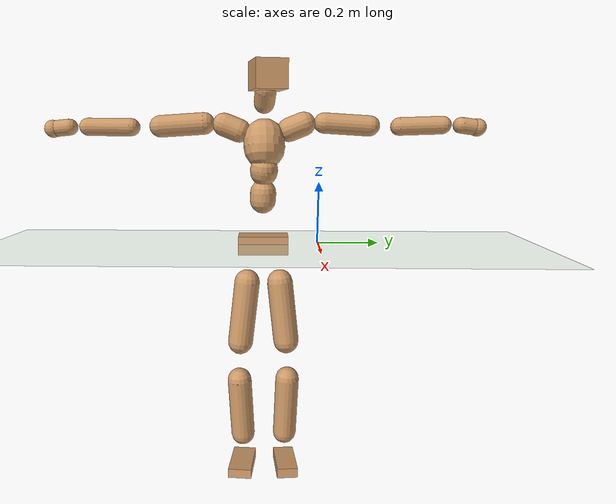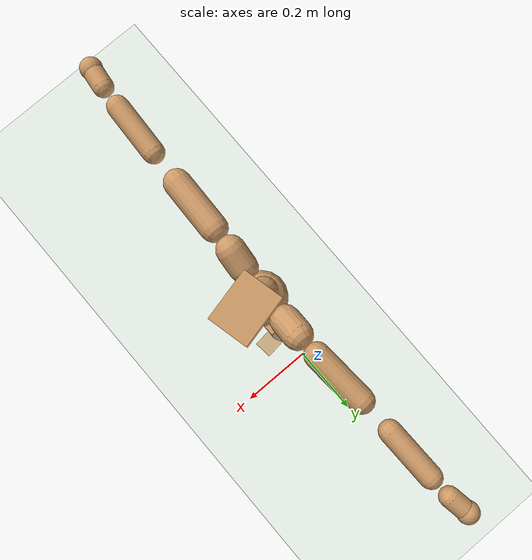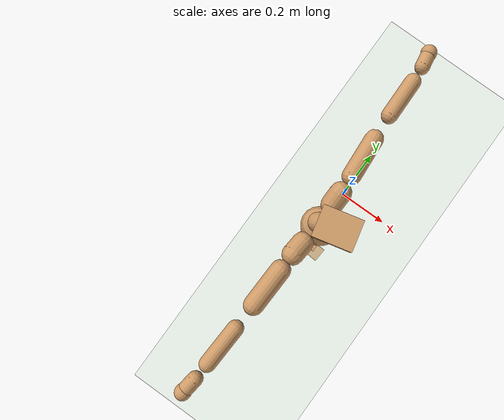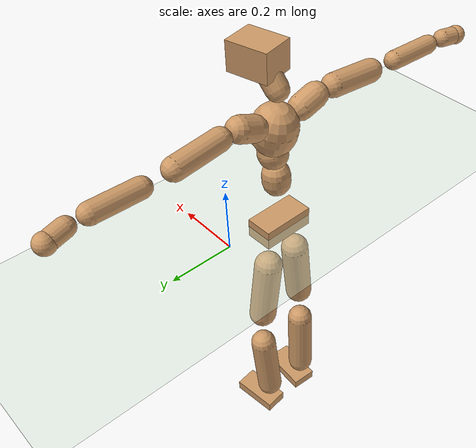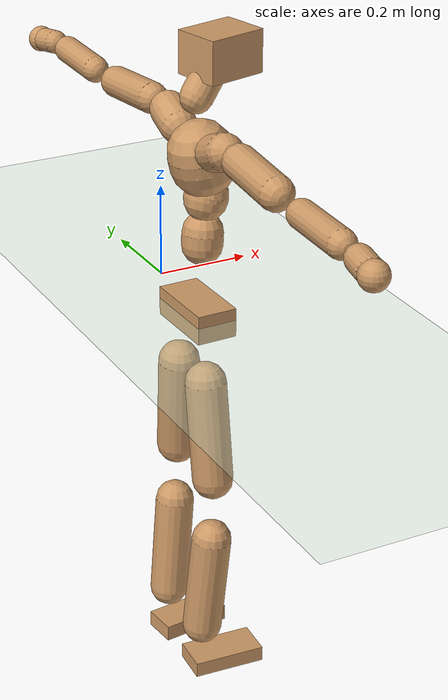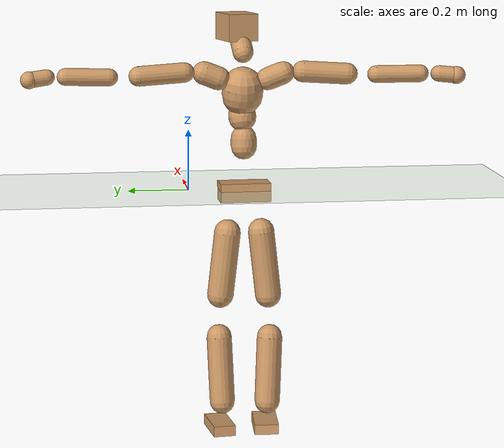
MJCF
<mujoco model="humanoid">
  <compiler coordinate="local" angle="radian"/>
  <default>
    <joint damping="0.0" armature="0.01" stiffness="0.0" limited="true"/>
    <geom conaffinity="1" condim="3" contype="7" margin="0.001" rgba="0.8 0.6 .4 1"/>
  </default>
  <asset>
    <texture type="skybox" builtin="gradient" rgb1=".4 .5 .6" rgb2="0 0 0" width="100" height="100"/>
    <texture builtin="flat" height="1278" mark="cross" markrgb="1 1 1" name="texgeom" random="0.01" rgb1="0.8 0.6 0.4" rgb2="0.8 0.6 0.4" type="cube" width="127"/>
    <texture builtin="checker" height="100" name="texplane" rgb1="0 0 0" rgb2="0.8 0.8 0.8" type="2d" width="100"/>
    <material name="MatPlane" reflectance="0.5" shininess="1" specular="1" texrepeat="60 60" texture="texplane"/>
    <material name="geom" texture="texgeom" texuniform="true"/>
  </asset>
  <worldbody>
    <light cutoff="100" diffuse="1 1 1" dir="-0 0 -1.3" directional="true" exponent="1" pos="0 0 1.3" specular=".1 .1 .1"/>
    <geom conaffinity="1" condim="3" name="floor" pos="0 0 0" rgba="0.8 0.9 0.8 1" size="100 100 .2" type="plane" material="MatPlane"/>
    <body name="Pelvis" pos="-0.0021 -0.1832 0.0037">
      <freejoint name="Pelvis"/>
      <geom type="box" contype="1" conaffinity="1" density="500" pos="-0.0064 -0.0002 -0.0107" size="0.0432 0.0829 0.0309" quat="0.9999 0.0000 0.0000 0.0121" name="Pelvis"/>
      <body name="L_Hip" pos="-0.0215 0.0494 -0.0761">
        <joint name="L_Hip_x" type="hinge" pos="0 0 0" axis="1 0 0" stiffness="800" damping="80" armature="0.02" range="-180.0000 180.0000"/>
        <joint name="L_Hip_y" type="hinge" pos="0 0 0" axis="0 1 0" stiffness="800" damping="80" armature="0.02" range="-180.0000 180.0000"/>
        <joint name="L_Hip_z" type="hinge" pos="0 0 0" axis="0 0 1" stiffness="800" damping="80" armature="0.02" range="-180.0000 180.0000"/>
        <geom type="capsule" contype="1" conaffinity="1" density="500" fromto="0.0023 0.0077 -0.0707 0.0093 0.0309 -0.2829" size="0.0439" name="L_Hip"/>
        <body name="L_Knee" pos="0.0116 0.0387 -0.3536">
          <joint name="L_Knee_x" type="hinge" pos="0 0 0" axis="1 0 0" stiffness="800" damping="80" armature="0.02" range="-180.0000 180.0000"/>
          <joint name="L_Knee_y" type="hinge" pos="0 0 0" axis="0 1 0" stiffness="800" damping="80" armature="0.02" range="-180.0000 180.0000"/>
          <joint name="L_Knee_z" type="hinge" pos="0 0 0" axis="0 0 1" stiffness="800" damping="80" armature="0.02" range="-180.0000 180.0000"/>
          <geom type="capsule" contype="1" conaffinity="1" density="500" fromto="-0.0061 -0.0027 -0.0733 -0.0246 -0.0107 -0.2931" size="0.0416" name="L_Knee"/>
          <body name="L_Ankle" pos="-0.0307 -0.0134 -0.3663">
            <joint name="L_Ankle_x" type="hinge" pos="0 0 0" axis="1 0 0" stiffness="800" damping="80" armature="0.02" range="-180.0000 180.0000"/>
            <joint name="L_Ankle_y" type="hinge" pos="0 0 0" axis="0 1 0" stiffness="800" damping="80" armature="0.02" range="-180.0000 180.0000"/>
            <joint name="L_Ankle_z" type="hinge" pos="0 0 0" axis="0 0 1" stiffness="800" damping="80" armature="0.02" range="-180.0000 180.0000"/>
            <geom type="box" contype="1" conaffinity="1" density="500" pos="0.0549 0.0061 -0.0250" size="0.0769 0.0366 0.0177" quat="0.9985 0.0000 0.0000 0.0553" name="L_Ankle"/>
            <body name="L_Toe" pos="0.1098 0.0122 -0.05">
              <joint name="L_Toe_x" type="hinge" pos="0 0 0" axis="1 0 0" stiffness="500" damping="50" armature="0.02" range="-180.0000 180.0000"/>
              <joint name="L_Toe_y" type="hinge" pos="0 0 0" axis="0 1 0" stiffness="500" damping="50" armature="0.02" range="-180.0000 180.0000"/>
              <joint name="L_Toe_z" type="hinge" pos="0 0 0" axis="0 0 1" stiffness="500" damping="50" armature="0.02" range="-180.0000 180.0000"/>
              <geom type="box" contype="1" conaffinity="1" density="500" pos="0.0000 0.0000 0.0259" size="0.0008 0.0019 0.0009" quat="0.9980 0.0000 0.0000 0.0631" name="L_Toe"/>
            </body>
          </body>
        </body>
      </body>
      <body name="R_Hip" pos="-0.0174 -0.0479 -0.0737">
        <joint name="R_Hip_x" type="hinge" pos="0 0 0" axis="1 0 0" stiffness="800" damping="80" armature="0.02" range="-180.0000 180.0000"/>
        <joint name="R_Hip_y" type="hinge" pos="0 0 0" axis="0 1 0" stiffness="800" damping="80" armature="0.02" range="-180.0000 180.0000"/>
        <joint name="R_Hip_z" type="hinge" pos="0 0 0" axis="0 0 1" stiffness="800" damping="80" armature="0.02" range="-180.0000 180.0000"/>
        <geom type="capsule" contype="1" conaffinity="1" density="500" fromto="0.0016 -0.0082 -0.0726 0.0065 -0.0329 -0.2904" size="0.0434" name="R_Hip"/>
        <body name="R_Knee" pos="0.0082 -0.0411 -0.363">
          <joint name="R_Knee_x" type="hinge" pos="0 0 0" axis="1 0 0" stiffness="800" damping="80" armature="0.02" range="-180.0000 180.0000"/>
          <joint name="R_Knee_y" type="hinge" pos="0 0 0" axis="0 1 0" stiffness="800" damping="80" armature="0.02" range="-180.0000 180.0000"/>
          <joint name="R_Knee_z" type="hinge" pos="0 0 0" axis="0 0 1" stiffness="800" damping="80" armature="0.02" range="-180.0000 180.0000"/>
          <geom type="capsule" contype="1" conaffinity="1" density="500" fromto="-0.0055 0.0034 -0.0729 -0.0219 0.0135 -0.2916" size="0.0423" name="R_Knee"/>
          <body name="R_Ankle" pos="-0.0274 0.0169 -0.3645">
            <joint name="R_Ankle_x" type="hinge" pos="0 0 0" axis="1 0 0" stiffness="800" damping="80" armature="0.02" range="-180.0000 180.0000"/>
            <joint name="R_Ankle_y" type="hinge" pos="0 0 0" axis="0 1 0" stiffness="800" damping="80" armature="0.02" range="-180.0000 180.0000"/>
            <joint name="R_Ankle_z" type="hinge" pos="0 0 0" axis="0 0 1" stiffness="800" damping="80" armature="0.02" range="-180.0000 180.0000"/>
            <geom type="box" contype="1" conaffinity="1" density="500" pos="0.0558 -0.0037 -0.0209" size="0.0785 0.0408 0.0168" quat="0.9994 0.0000 0.0000 -0.0333" name="R_Ankle"/>
            <body name="R_Toe" pos="0.1117 -0.0075 -0.0417">
              <joint name="R_Toe_x" type="hinge" pos="0 0 0" axis="1 0 0" stiffness="500" damping="50" armature="0.02" range="-180.0000 180.0000"/>
              <joint name="R_Toe_y" type="hinge" pos="0 0 0" axis="0 1 0" stiffness="500" damping="50" armature="0.02" range="-180.0000 180.0000"/>
              <joint name="R_Toe_z" type="hinge" pos="0 0 0" axis="0 0 1" stiffness="500" damping="50" armature="0.02" range="-180.0000 180.0000"/>
              <geom type="box" contype="1" conaffinity="1" density="500" pos="0.0000 0.0000 0.0228" size="0.0008 0.002 0.0009" quat="0.9997 0.0000 0.0000 -0.0240" name="R_Toe"/>
            </body>
          </body>
        </body>
      </body>
      <body name="Torso" pos="0.0003 -0.0024 0.0858">
        <joint name="Torso_x" type="hinge" pos="0 0 0" axis="1 0 0" stiffness="1000" damping="100" armature="0.02" range="-180.0000 180.0000"/>
        <joint name="Torso_y" type="hinge" pos="0 0 0" axis="0 1 0" stiffness="1000" damping="100" armature="0.02" range="-180.0000 180.0000"/>
        <joint name="Torso_z" type="hinge" pos="0 0 0" axis="0 0 1" stiffness="1000" damping="100" armature="0.02" range="-180.0000 180.0000"/>
        <geom type="capsule" contype="1" conaffinity="1" density="500" fromto="0.0045 0.0022 0.0772 0.0030 0.0015 0.0514" size="0.0427" name="Torso"/>
        <body name="Spine" pos="0.0075 0.0037 0.1286">
          <joint name="Spine_x" type="hinge" pos="0 0 0" axis="1 0 0" stiffness="1000" damping="100" armature="0.02" range="-180.0000 180.0000"/>
          <joint name="Spine_y" type="hinge" pos="0 0 0" axis="0 1 0" stiffness="1000" damping="100" armature="0.02" range="-180.0000 180.0000"/>
          <joint name="Spine_z" type="hinge" pos="0 0 0" axis="0 0 1" stiffness="1000" damping="100" armature="0.02" range="-180.0000 180.0000"/>
          <geom type="capsule" contype="1" conaffinity="1" density="500" fromto="0.0068 0.0020 0.0260 0.0046 0.0013 0.0173" size="0.0453" name="Spine"/>
          <body name="Chest" pos="0.0114 0.0033 0.0433">
            <joint name="Chest_x" type="hinge" pos="0 0 0" axis="1 0 0" stiffness="1000" damping="100" armature="0.02" range="-180.0000 180.0000"/>
            <joint name="Chest_y" type="hinge" pos="0 0 0" axis="0 1 0" stiffness="1000" damping="100" armature="0.02" range="-180.0000 180.0000"/>
            <joint name="Chest_z" type="hinge" pos="0 0 0" axis="0 0 1" stiffness="1000" damping="100" armature="0.02" range="-180.0000 180.0000"/>
            <geom type="capsule" contype="1" conaffinity="1" density="500" fromto="-0.0187 -0.0012 0.0752 -0.0125 -0.0008 0.0501" size="0.0673" name="Chest"/>
            <body name="Neck" pos="-0.0369 -0.0033 0.1788">
              <joint name="Neck_x" type="hinge" pos="0 0 0" axis="1 0 0" stiffness="500" damping="50" armature="0.02" range="-180.0000 180.0000"/>
              <joint name="Neck_y" type="hinge" pos="0 0 0" axis="0 1 0" stiffness="500" damping="50" armature="0.02" range="-180.0000 180.0000"/>
              <joint name="Neck_z" type="hinge" pos="0 0 0" axis="0 0 1" stiffness="500" damping="50" armature="0.02" range="-180.0000 180.0000"/>
              <geom type="capsule" contype="1" conaffinity="1" density="500" fromto="0.0089 0.0018 0.0120 0.0355 0.0072 0.0482" size="0.0338" name="Neck"/>
              <body name="Head" pos="0.0444 0.009 0.0602">
                <joint name="Head_x" type="hinge" pos="0 0 0" axis="1 0 0" stiffness="500" damping="50" armature="0.02" range="-180.0000 180.0000"/>
                <joint name="Head_y" type="hinge" pos="0 0 0" axis="0 1 0" stiffness="500" damping="50" armature="0.02" range="-180.0000 180.0000"/>
                <joint name="Head_z" type="hinge" pos="0 0 0" axis="0 0 1" stiffness="500" damping="50" armature="0.02" range="-180.0000 180.0000"/>
                <geom type="box" contype="1" conaffinity="1" density="500" pos="0.0232 0.0055 0.0311" size="0.0642 0.0504 0.0444" quat="0.9932 0.0000 0.0000 0.1164" name="Head"/>
              </body>
            </body>
            <body name="L_Thorax" pos="-0.0266 0.0628 0.1002">
              <joint name="L_Thorax_x" type="hinge" pos="0 0 0" axis="1 0 0" stiffness="500" damping="50" armature="0.02" range="-180.0000 180.0000"/>
              <joint name="L_Thorax_y" type="hinge" pos="0 0 0" axis="0 1 0" stiffness="500" damping="50" armature="0.02" range="-180.0000 180.0000"/>
              <joint name="L_Thorax_z" type="hinge" pos="0 0 0" axis="0 0 1" stiffness="500" damping="50" armature="0.02" range="-180.0000 180.0000"/>
              <geom type="capsule" contype="1" conaffinity="1" density="500" fromto="0.0003 0.0158 0.0062 0.0014 0.0631 0.0247" size="0.0382" name="L_Thorax"/>
              <body name="L_Shoulder" pos="0.0017 0.0789 0.0308">
                <joint name="L_Shoulder_x" type="hinge" pos="0 0 0" axis="1 0 0" stiffness="500" damping="50" armature="0.02" range="-720.0000 720.0000"/>
                <joint name="L_Shoulder_y" type="hinge" pos="0 0 0" axis="0 1 0" stiffness="500" damping="50" armature="0.02" range="-720.0000 720.0000"/>
                <joint name="L_Shoulder_z" type="hinge" pos="0 0 0" axis="0 0 1" stiffness="500" damping="50" armature="0.02" range="-720.0000 720.0000"/>
                <geom type="capsule" contype="1" conaffinity="1" density="500" fromto="-0.0035 0.0496 -0.0031 -0.0142 0.1984 -0.0122" size="0.0328" name="L_Shoulder"/>
                <body name="L_Elbow" pos="-0.0177 0.248 -0.0153">
                  <joint name="L_Elbow_x" type="hinge" pos="0 0 0" axis="1 0 0" stiffness="500" damping="50" armature="0.02" range="-720.0000 720.0000"/>
                  <joint name="L_Elbow_y" type="hinge" pos="0 0 0" axis="0 1 0" stiffness="500" damping="50" armature="0.02" range="-720.0000 720.0000"/>
                  <joint name="L_Elbow_z" type="hinge" pos="0 0 0" axis="0 0 1" stiffness="500" damping="50" armature="0.02" range="-720.0000 720.0000"/>
                  <geom type="capsule" contype="1" conaffinity="1" density="500" fromto="-0.0008 0.0465 0.0014 -0.0034 0.1860 0.0057" size="0.0285" name="L_Elbow"/>
                  <body name="L_Wrist" pos="-0.0042 0.2325 0.0071">
                    <joint name="L_Wrist_x" type="hinge" pos="0 0 0" axis="1 0 0" stiffness="300" damping="30" armature="0.02" range="-180.0000 180.0000"/>
                    <joint name="L_Wrist_y" type="hinge" pos="0 0 0" axis="0 1 0" stiffness="300" damping="30" armature="0.02" range="-180.0000 180.0000"/>
                    <joint name="L_Wrist_z" type="hinge" pos="0 0 0" axis="0 0 1" stiffness="300" damping="30" armature="0.02" range="-180.0000 180.0000"/>
                    <geom type="capsule" contype="1" conaffinity="1" density="500" fromto="-0.0024 0.0141 -0.0018 -0.0097 0.0565 -0.0071" size="0.0257" name="L_Wrist"/>
                    <body name="L_Hand" pos="-0.0121 0.0706 -0.0089">
                      <joint name="L_Hand_x" type="hinge" pos="0 0 0" axis="1 0 0" stiffness="300" damping="30" armature="0.02" range="-180.0000 180.0000"/>
                      <joint name="L_Hand_y" type="hinge" pos="0 0 0" axis="0 1 0" stiffness="300" damping="30" armature="0.02" range="-180.0000 180.0000"/>
                      <joint name="L_Hand_z" type="hinge" pos="0 0 0" axis="0 0 1" stiffness="300" damping="30" armature="0.02" range="-180.0000 180.0000"/>
                      <geom type="sphere" contype="1" conaffinity="1" density="500" size="0.0282" pos="0.0000 0.0000 0.0000" name="L_Hand"/>
                    </body>
                  </body>
                </body>
              </body>
            </body>
            <body name="R_Thorax" pos="-0.0301 -0.0655 0.097">
              <joint name="R_Thorax_x" type="hinge" pos="0 0 0" axis="1 0 0" stiffness="500" damping="50" armature="0.02" range="-180.0000 180.0000"/>
              <joint name="R_Thorax_y" type="hinge" pos="0 0 0" axis="0 1 0" stiffness="500" damping="50" armature="0.02" range="-180.0000 180.0000"/>
              <joint name="R_Thorax_z" type="hinge" pos="0 0 0" axis="0 0 1" stiffness="500" damping="50" armature="0.02" range="-180.0000 180.0000"/>
              <geom type="capsule" contype="1" conaffinity="1" density="500" fromto="-0.0013 -0.0168 0.0066 -0.0050 -0.0670 0.0263" size="0.0374" name="R_Thorax"/>
              <body name="R_Shoulder" pos="-0.0063 -0.0838 0.0329">
                <joint name="R_Shoulder_x" type="hinge" pos="0 0 0" axis="1 0 0" stiffness="500" damping="50" armature="0.02" range="-720.0000 720.0000"/>
                <joint name="R_Shoulder_y" type="hinge" pos="0 0 0" axis="0 1 0" stiffness="500" damping="50" armature="0.02" range="-720.0000 720.0000"/>
                <joint name="R_Shoulder_z" type="hinge" pos="0 0 0" axis="0 0 1" stiffness="500" damping="50" armature="0.02" range="-720.0000 720.0000"/>
                <geom type="capsule" contype="1" conaffinity="1" density="500" fromto="-0.0015 -0.0485 -0.0030 -0.0061 -0.1938 -0.0120" size="0.0352" name="R_Shoulder"/>
                <body name="R_Elbow" pos="-0.0076 -0.2423 -0.015">
                  <joint name="R_Elbow_x" type="hinge" pos="0 0 0" axis="1 0 0" stiffness="500" damping="50" armature="0.02" range="-720.0000 720.0000"/>
                  <joint name="R_Elbow_y" type="hinge" pos="0 0 0" axis="0 1 0" stiffness="500" damping="50" armature="0.02" range="-720.0000 720.0000"/>
                  <joint name="R_Elbow_z" type="hinge" pos="0 0 0" axis="0 0 1" stiffness="500" damping="50" armature="0.02" range="-720.0000 720.0000"/>
                  <geom type="capsule" contype="1" conaffinity="1" density="500" fromto="-0.0023 -0.0484 0.0004 -0.0090 -0.1937 0.0016" size="0.0287" name="R_Elbow"/>
                  <body name="R_Wrist" pos="-0.0113 -0.2421 0.0021">
                    <joint name="R_Wrist_x" type="hinge" pos="0 0 0" axis="1 0 0" stiffness="300" damping="30" armature="0.02" range="-180.0000 180.0000"/>
                    <joint name="R_Wrist_y" type="hinge" pos="0 0 0" axis="0 1 0" stiffness="300" damping="30" armature="0.02" range="-180.0000 180.0000"/>
                    <joint name="R_Wrist_z" type="hinge" pos="0 0 0" axis="0 0 1" stiffness="300" damping="30" armature="0.02" range="-180.0000 180.0000"/>
                    <geom type="capsule" contype="1" conaffinity="1" density="500" fromto="-0.0018 -0.0146 -0.0013 -0.0074 -0.0585 -0.0054" size="0.0268" name="R_Wrist"/>
                    <body name="R_Hand" pos="-0.0092 -0.0732 -0.0067">
                      <joint name="R_Hand_x" type="hinge" pos="0 0 0" axis="1 0 0" stiffness="300" damping="30" armature="0.02" range="-180.0000 180.0000"/>
                      <joint name="R_Hand_y" type="hinge" pos="0 0 0" axis="0 1 0" stiffness="300" damping="30" armature="0.02" range="-180.0000 180.0000"/>
                      <joint name="R_Hand_z" type="hinge" pos="0 0 0" axis="0 0 1" stiffness="300" damping="30" armature="0.02" range="-180.0000 180.0000"/>
                      <geom type="sphere" contype="1" conaffinity="1" density="500" size="0.0290" pos="0.0000 0.0000 0.0000" name="R_Hand"/>
                    </body>
                  </body>
                </body>
              </body>
            </body>
          </body>
        </body>
      </body>
    </body>
  </worldbody>
  <actuator>
    <motor name="L_Hip_x" joint="L_Hip_x" gear="500"/>
    <motor name="L_Hip_y" joint="L_Hip_y" gear="500"/>
    <motor name="L_Hip_z" joint="L_Hip_z" gear="500"/>
    <motor name="L_Knee_x" joint="L_Knee_x" gear="500"/>
    <motor name="L_Knee_y" joint="L_Knee_y" gear="500"/>
    <motor name="L_Knee_z" joint="L_Knee_z" gear="500"/>
    <motor name="L_Ankle_x" joint="L_Ankle_x" gear="500"/>
    <motor name="L_Ankle_y" joint="L_Ankle_y" gear="500"/>
    <motor name="L_Ankle_z" joint="L_Ankle_z" gear="500"/>
    <motor name="L_Toe_x" joint="L_Toe_x" gear="500"/>
    <motor name="L_Toe_y" joint="L_Toe_y" gear="500"/>
    <motor name="L_Toe_z" joint="L_Toe_z" gear="500"/>
    <motor name="R_Hip_x" joint="R_Hip_x" gear="500"/>
    <motor name="R_Hip_y" joint="R_Hip_y" gear="500"/>
    <motor name="R_Hip_z" joint="R_Hip_z" gear="500"/>
    <motor name="R_Knee_x" joint="R_Knee_x" gear="500"/>
    <motor name="R_Knee_y" joint="R_Knee_y" gear="500"/>
    <motor name="R_Knee_z" joint="R_Knee_z" gear="500"/>
    <motor name="R_Ankle_x" joint="R_Ankle_x" gear="500"/>
    <motor name="R_Ankle_y" joint="R_Ankle_y" gear="500"/>
    <motor name="R_Ankle_z" joint="R_Ankle_z" gear="500"/>
    <motor name="R_Toe_x" joint="R_Toe_x" gear="500"/>
    <motor name="R_Toe_y" joint="R_Toe_y" gear="500"/>
    <motor name="R_Toe_z" joint="R_Toe_z" gear="500"/>
    <motor name="Torso_x" joint="Torso_x" gear="500"/>
    <motor name="Torso_y" joint="Torso_y" gear="500"/>
    <motor name="Torso_z" joint="Torso_z" gear="500"/>
    <motor name="Spine_x" joint="Spine_x" gear="500"/>
    <motor name="Spine_y" joint="Spine_y" gear="500"/>
    <motor name="Spine_z" joint="Spine_z" gear="500"/>
    <motor name="Chest_x" joint="Chest_x" gear="500"/>
    <motor name="Chest_y" joint="Chest_y" gear="500"/>
    <motor name="Chest_z" joint="Chest_z" gear="500"/>
    <motor name="Neck_x" joint="Neck_x" gear="500"/>
    <motor name="Neck_y" joint="Neck_y" gear="500"/>
    <motor name="Neck_z" joint="Neck_z" gear="500"/>
    <motor name="Head_x" joint="Head_x" gear="500"/>
    <motor name="Head_y" joint="Head_y" gear="500"/>
    <motor name="Head_z" joint="Head_z" gear="500"/>
    <motor name="L_Thorax_x" joint="L_Thorax_x" gear="500"/>
    <motor name="L_Thorax_y" joint="L_Thorax_y" gear="500"/>
    <motor name="L_Thorax_z" joint="L_Thorax_z" gear="500"/>
    <motor name="L_Shoulder_x" joint="L_Shoulder_x" gear="500"/>
    <motor name="L_Shoulder_y" joint="L_Shoulder_y" gear="500"/>
    <motor name="L_Shoulder_z" joint="L_Shoulder_z" gear="500"/>
    <motor name="L_Elbow_x" joint="L_Elbow_x" gear="500"/>
    <motor name="L_Elbow_y" joint="L_Elbow_y" gear="500"/>
    <motor name="L_Elbow_z" joint="L_Elbow_z" gear="500"/>
    <motor name="L_Wrist_x" joint="L_Wrist_x" gear="500"/>
    <motor name="L_Wrist_y" joint="L_Wrist_y" gear="500"/>
    <motor name="L_Wrist_z" joint="L_Wrist_z" gear="500"/>
    <motor name="L_Hand_x" joint="L_Hand_x" gear="500"/>
    <motor name="L_Hand_y" joint="L_Hand_y" gear="500"/>
    <motor name="L_Hand_z" joint="L_Hand_z" gear="500"/>
    <motor name="R_Thorax_x" joint="R_Thorax_x" gear="500"/>
    <motor name="R_Thorax_y" joint="R_Thorax_y" gear="500"/>
    <motor name="R_Thorax_z" joint="R_Thorax_z" gear="500"/>
    <motor name="R_Shoulder_x" joint="R_Shoulder_x" gear="500"/>
    <motor name="R_Shoulder_y" joint="R_Shoulder_y" gear="500"/>
    <motor name="R_Shoulder_z" joint="R_Shoulder_z" gear="500"/>
    <motor name="R_Elbow_x" joint="R_Elbow_x" gear="500"/>
    <motor name="R_Elbow_y" joint="R_Elbow_y" gear="500"/>
    <motor name="R_Elbow_z" joint="R_Elbow_z" gear="500"/>
    <motor name="R_Wrist_x" joint="R_Wrist_x" gear="500"/>
    <motor name="R_Wrist_y" joint="R_Wrist_y" gear="500"/>
    <motor name="R_Wrist_z" joint="R_Wrist_z" gear="500"/>
    <motor name="R_Hand_x" joint="R_Hand_x" gear="500"/>
    <motor name="R_Hand_y" joint="R_Hand_y" gear="500"/>
    <motor name="R_Hand_z" joint="R_Hand_z" gear="500"/>
  </actuator>
  <contact>
    <exclude body1="Torso" body2="Chest"/>
    <exclude body1="Head" body2="Chest"/>
    <exclude body1="R_Knee" body2="R_Toe"/>
    <exclude body1="R_Knee" body2="L_Ankle"/>
    <exclude body1="R_Knee" body2="L_Toe"/>
    <exclude body1="L_Knee" body2="L_Toe"/>
    <exclude body1="L_Knee" body2="R_Ankle"/>
    <exclude body1="L_Knee" body2="R_Toe"/>
    <exclude body1="L_Shoulder" body2="Chest"/>
    <exclude body1="R_Shoulder" body2="Chest"/>
  </contact>
  <sensor/>
  <size njmax="700" nconmax="700"/>
</mujoco>
